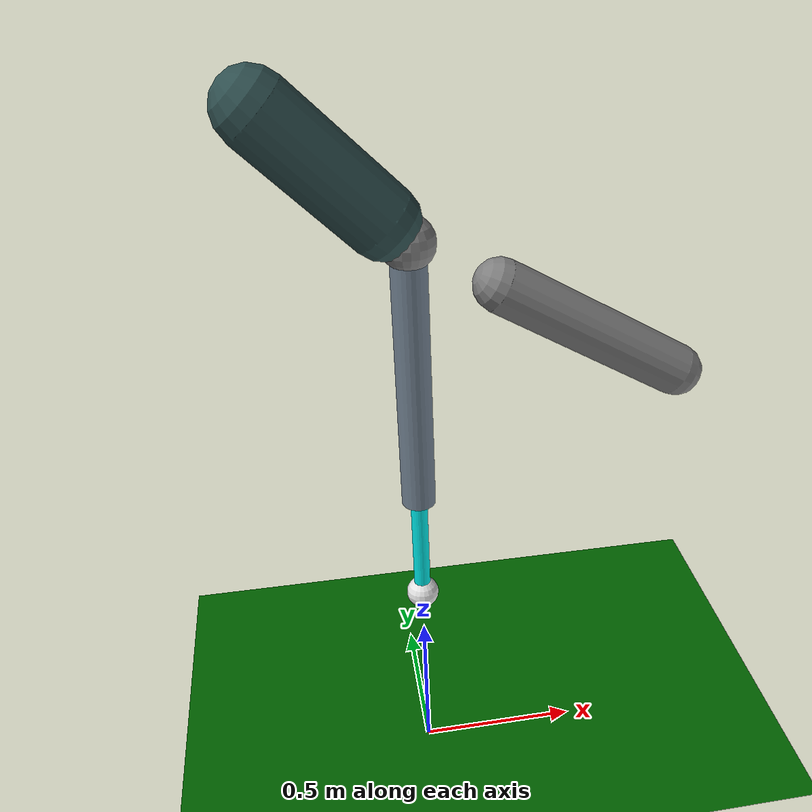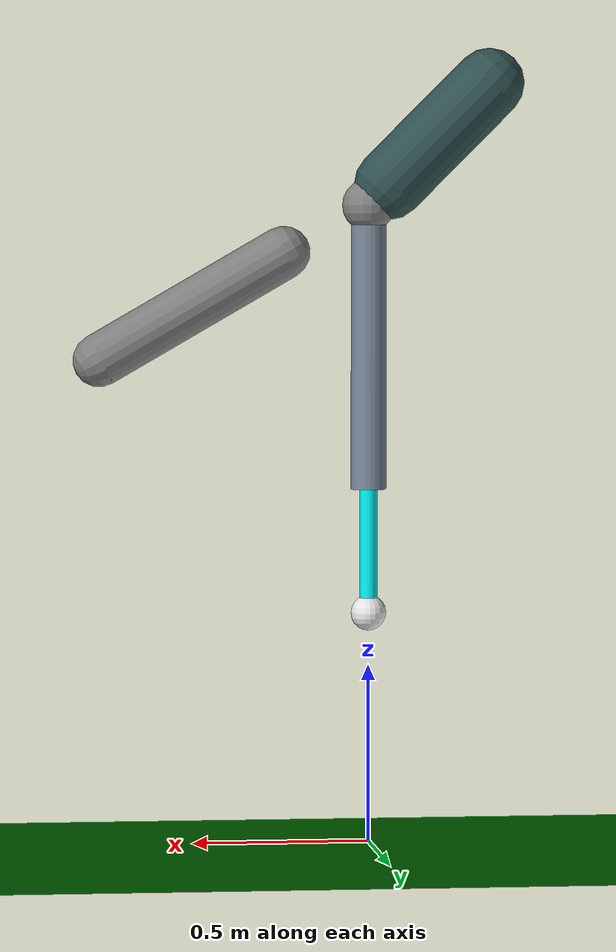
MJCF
<mujoco model="Kangaroo">
  <compiler angle="degree" inertiafromgeom="true"/>
  <option timestep="0.001" integrator="RK4"/>
  <visual>
    <map znear="0.02"/>
  </visual>
  <worldbody>
    <light cutoff="100" diffuse="1 1 1" dir="-0 0 -1.3" directional="true" exponent="1" pos="0 0 1.3" specular=".1 .1 .1"/>
    <geom conaffinity="1" condim="3" pos="-18 0 0" size="20 1 0.125" type="plane" rgba="0 0.4 0 1"/>
    <body name="torso" pos="0 0 2"> <!-- torso -->
      <camera name="track" mode="trackcom" pos="0 -3 -0.25" xyaxes="1 0 0 0 0 1"/>
      <joint armature="0" axis="1 0 0" damping="0" limited="false" name="x" pos="0 0 0" stiffness="0" type="slide"/> <!-- lets us move in x axis -->
      <joint armature="0" axis="0 0 1" damping="0" limited="false" name="z" pos="0 0 0" stiffness="0" type="slide"/> <!-- lets us move in z axis -->
      <joint armature="0" axis="0 1 0" damping="0" limited="false" name="y" pos="0 0 0" stiffness="0" type="hinge"/> <!-- lets us rotate along the y axis -->
      <geom type="capsule" pos="-0.2 0 0" axisangle="0 1 0 -45" size="0.1 0.2" rgba="0.184 0.31 0.31 1" mass="20"/> <!-- torso shape -->
      <geom type="sphere" size="0.075" pos="0 0 -0.2" rgba="0.5 0.5 0.5 1" mass="0"/> <!-- joint geometry for visual -->
      <body name="tail" pos="0 0 -0.2"> <!-- tail -->
        <joint axis="0 1 0" name="tail_joint" range=" 0 240" type="hinge"/>
        <geom type="capsule" axisangle="0 1 0 -60" size="0.075 0.3" pos="0.5 0 -0.283" rgba="0.5 0.5 0.5 1" mass=".5"/> <!-- tail shape -->
      </body> <!-- tail end -->
      <body name="leg" pos="0 0 -0.2"> <!-- leg -->
        <joint axis="0 1 0" name="leg_joint" range="0 90" type="hinge"/>
        <geom size="0.05 0.4" pos="0 0 -0.4" type="cylinder" mass="3" rgba="0.44 0.5 0.56 1"/>
        <body name="foot" pos="0 0 -0.75"> <!-- foot -->
          <joint axis="0 0 -1" name="foot_joint" springref="0" springdamper="1 0.5" range="-0.4 0.4" pos="0 0 0" type="slide"/> <!-- springdamper="time_constant damping_ratio" -->
          <geom size="0.025 0.4" pos="0 0 0" type="cylinder" mass="0.1" rgba="0 0.9 0.9 1"/>
          <geom size="0.05" pos="0 0 -0.4" mass="0.1" rgba="0.9 0.9 0.9 1"/>
        </body> <!-- foot end -->
      </body> <!-- leg end -->
    </body> <!-- torso end -->
  </worldbody>
  <actuator>
    <general ctrllimited="true" ctrlrange="-1.0 1.0" gear="20.0" joint="leg_joint" gainprm="1"/>
    <general ctrllimited="true" ctrlrange="-1.0 1.0" gear="300.0" joint="foot_joint" gainprm="1"/>
    <general ctrllimited="true" ctrlrange="-1.0 1.0" gear="20.0" joint="tail_joint" gainprm="1"/>
  </actuator>
</mujoco>
